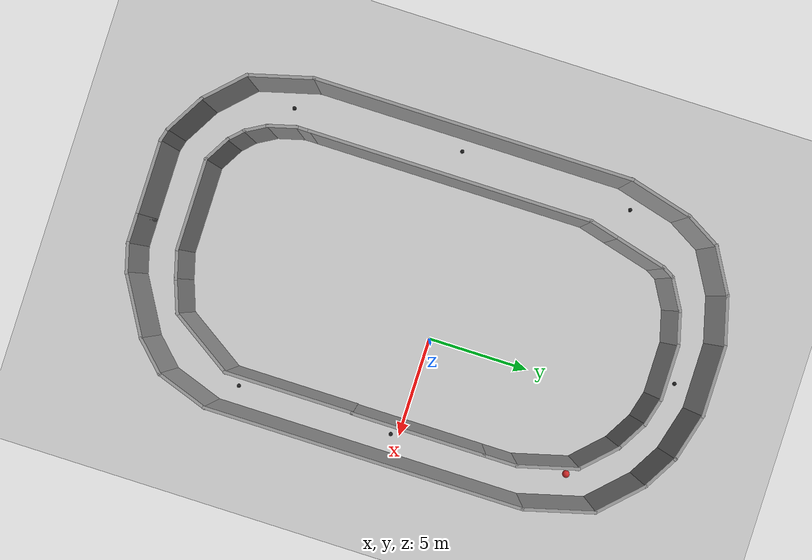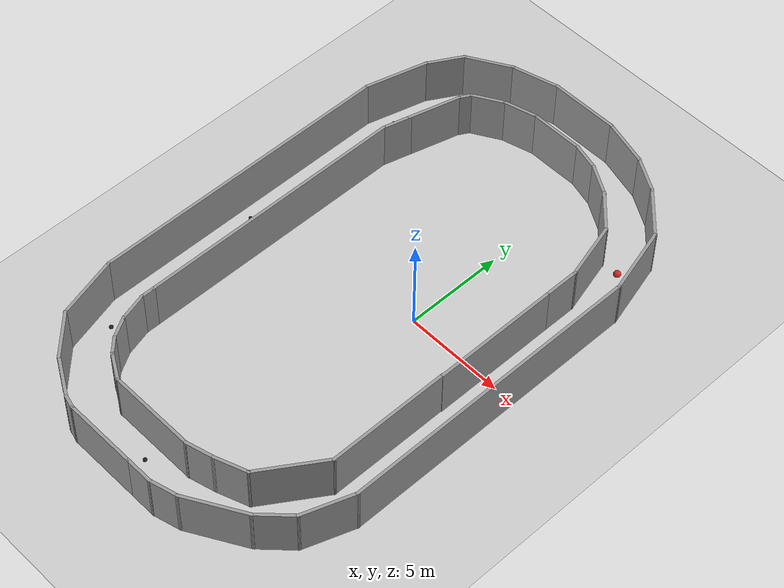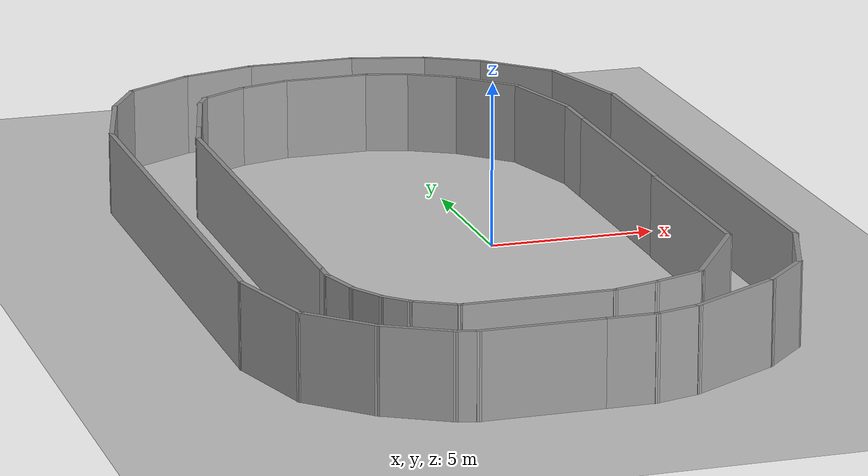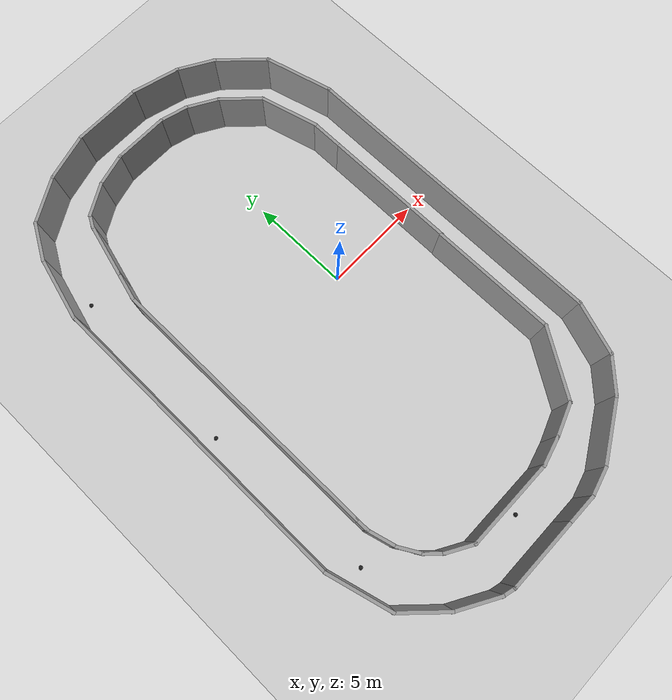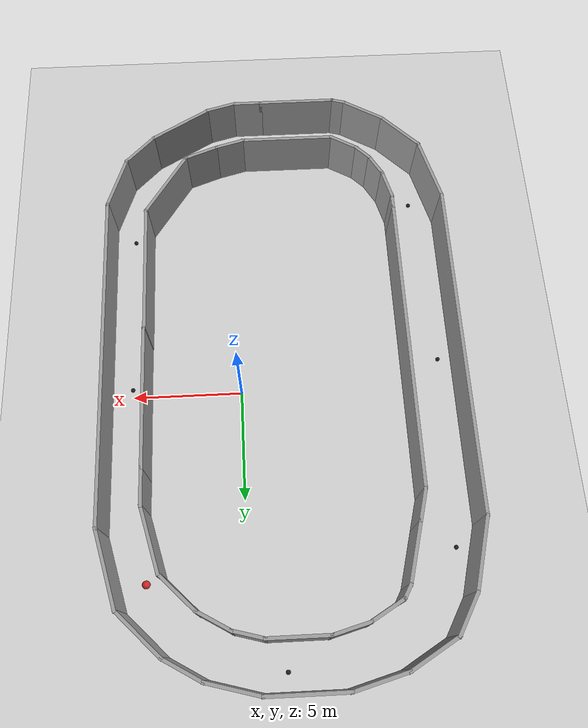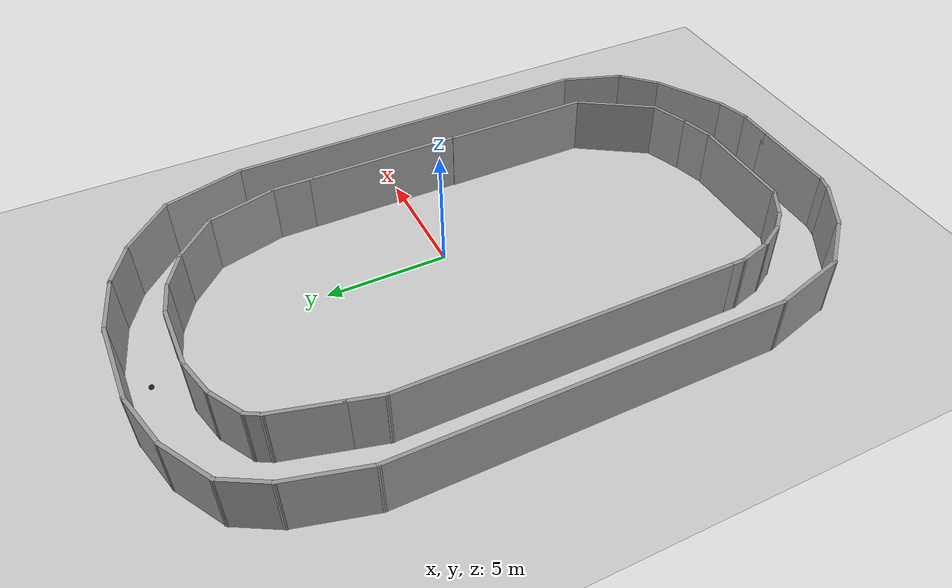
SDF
<sdf version="1.7">
 <world name="default">
  <light name="sun" type="directional">
   <pose>0 0 10 0 -0 0</pose>
   <diffuse>0.8 0.8 0.8 1</diffuse>
   <specular>0.2 0.2 0.2 1</specular>
   <attenuation>
    <range>1000</range>
    <constant>0.9</constant>
    <linear>0.01</linear>
    <quadratic>0.001</quadratic>
   </attenuation>
   <direction>-0.5 0.1 -0.9</direction>
   <spot><inner_angle>0</inner_angle><outer_angle>0</outer_angle><falloff>0</falloff></spot>
  </light>
  <model name="ground_plane">
   <static>1</static>
   <link name="link">
    <collision name="collision">
     <geometry><plane><normal>0 0 1</normal><size>100 100</size></plane></geometry>
     <surface>
      <contact><collide_bitmask>65535</collide_bitmask></contact>
      <friction><ode><mu>100</mu><mu2>50</mu2></ode></friction>
     </surface>
    </collision>
    <visual name="visual">
     <cast_shadows>0</cast_shadows>
     <geometry><plane><normal>0 0 1</normal><size>100 100</size></plane></geometry>
     <material>
      <script><uri>file://media/materials/scripts/gazebo.material</uri><name>Gazebo/Grey</name></script>
     </material>
    </visual>
   </link>
  </model>
  <gravity>0 0 -9.8</gravity>
  <magnetic_field>6e-06 2.3e-05 -4.2e-05</magnetic_field>
  <atmosphere type="adiabatic"/>
  <physics type="ode">
   <max_step_size>0.001</max_step_size>
   <real_time_factor>1</real_time_factor>
   <real_time_update_rate>1000</real_time_update_rate>
  </physics>
  <scene><ambient>0.4 0.4 0.4 1</ambient><background>0.7 0.7 0.7 1</background><shadows>1</shadows></scene>
  <spherical_coordinates>
   <surface_model>EARTH_WGS84</surface_model>
   <latitude_deg>0</latitude_deg>
   <longitude_deg>0</longitude_deg>
   <elevation>0</elevation>
   <heading_deg>0</heading_deg>
  </spherical_coordinates>
  <model name="oval_track">
   <pose>-1.96071 -0.818867 0 0 -0 0</pose>
   <link name="Wall_0">
    <collision name="Wall_0_Collision">
     <geometry><box><size>15.5 0.15 2.5</size></box></geometry>
     <pose>0 0 1.25 0 -0 0</pose>
    </collision>
    <visual name="Wall_0_Visual">
     <pose>0 0 1.25 0 -0 0</pose>
     <geometry><box><size>15.5 0.15 2.5</size></box></geometry>
     <material>
      <script><uri>file://media/materials/scripts/gazebo.material</uri><name>Gazebo/Grey</name></script>
      <ambient>1 1 1 1</ambient>
     </material>
     <meta><layer>0</layer></meta>
    </visual>
    <pose>7.97814 -0.487002 0 0 -0 1.5708</pose>
   </link>
   <link name="Wall_10">
    <collision name="Wall_10_Collision">
     <geometry><box><size>3.25 0.15 2.5</size></box></geometry>
     <pose>0 0 1.25 0 -0 0</pose>
    </collision>
    <visual name="Wall_10_Visual">
     <pose>0 0 1.25 0 -0 0</pose>
     <geometry><box><size>3.25 0.15 2.5</size></box></geometry>
     <material>
      <script><uri>file://media/materials/scripts/gazebo.material</uri><name>Gazebo/Grey</name></script>
      <ambient>1 1 1 1</ambient>
     </material>
     <meta><layer>0</layer></meta>
    </visual>
    <pose>-7.58071 8.913 0 0 -0 -1.8326</pose>
   </link>
   <link name="Wall_12">
    <collision name="Wall_12_Collision">
     <geometry><box><size>15.5 0.15 2.5</size></box></geometry>
     <pose>0 0 1.25 0 -0 0</pose>
    </collision>
    <visual name="Wall_12_Visual">
     <pose>0 0 1.25 0 -0 0</pose>
     <geometry><box><size>15.5 0.15 2.5</size></box></geometry>
     <material>
      <script><uri>file://media/materials/scripts/gazebo.material</uri><name>Gazebo/Grey</name></script>
      <ambient>1 1 1 1</ambient>
     </material>
     <meta><layer>0</layer></meta>
    </visual>
    <pose>-7.98188 -0.25919 0 0 -0 -1.5708</pose>
   </link>
   <link name="Wall_13">
    <collision name="Wall_13_Collision">
     <geometry><box><size>3.25 0.15 2.5</size></box></geometry>
     <pose>0 0 1.25 0 -0 0</pose>
    </collision>
    <visual name="Wall_13_Visual">
     <pose>0 0 1.25 0 -0 0</pose>
     <geometry><box><size>3.25 0.15 2.5</size></box></geometry>
     <material>
      <script><uri>file://media/materials/scripts/gazebo.material</uri><name>Gazebo/Grey</name></script>
      <ambient>1 1 1 1</ambient>
     </material>
     <meta><layer>0</layer></meta>
    </visual>
    <pose>-7.58071 -9.43137 0 0 -0 -1.309</pose>
   </link>
   <link name="Wall_14">
    <collision name="Wall_14_Collision">
     <geometry><box><size>2.5 0.15 2.5</size></box></geometry>
     <pose>0 0 1.25 0 -0 0</pose>
    </collision>
    <visual name="Wall_14_Visual">
     <pose>0 0 1.25 0 -0 0</pose>
     <geometry><box><size>2.5 0.15 2.5</size></box></geometry>
     <material>
      <script><uri>file://media/materials/scripts/gazebo.material</uri><name>Gazebo/Grey</name></script>
      <ambient>1 1 1 1</ambient>
     </material>
     <meta><layer>0</layer></meta>
    </visual>
    <pose>-6.34869 -11.7594 0 0 -0 -0.785398</pose>
   </link>
   <link name="Wall_15">
    <collision name="Wall_15_Collision">
     <geometry><box><size>2.25 0.15 2.5</size></box></geometry>
     <pose>0 0 1.25 0 -0 0</pose>
    </collision>
    <visual name="Wall_15_Visual">
     <pose>0 0 1.25 0 -0 0</pose>
     <geometry><box><size>2.25 0.15 2.5</size></box></geometry>
     <material>
      <script><uri>file://media/materials/scripts/gazebo.material</uri><name>Gazebo/Grey</name></script>
      <ambient>1 1 1 1</ambient>
     </material>
     <meta><layer>0</layer></meta>
    </visual>
    <pose>-4.60851 -13.1153 0 0 -0 -0.523599</pose>
   </link>
   <link name="Wall_16">
    <collision name="Wall_16_Collision">
     <geometry><box><size>0.75 0.15 2.5</size></box></geometry>
     <pose>0 0 1.25 0 -0 0</pose>
    </collision>
    <visual name="Wall_16_Visual">
     <pose>0 0 1.25 0 -0 0</pose>
     <geometry><box><size>0.75 0.15 2.5</size></box></geometry>
     <material>
      <script><uri>file://media/materials/scripts/gazebo.material</uri><name>Gazebo/Grey</name></script>
      <ambient>1 1 1 1</ambient>
     </material>
     <meta><layer>0</layer></meta>
    </visual>
    <pose>-3.40941 -13.7179 0 0 -0 -0.261799</pose>
   </link>
   <link name="Wall_17">
    <collision name="Wall_17_Collision">
     <geometry><box><size>3.75 0.15 2.5</size></box></geometry>
     <pose>0 0 1.25 0 -0 0</pose>
    </collision>
    <visual name="Wall_17_Visual">
     <pose>0 0 1.25 0 -0 0</pose>
     <geometry><box><size>3.75 0.15 2.5</size></box></geometry>
     <material>
      <script><uri>file://media/materials/scripts/gazebo.material</uri><name>Gazebo/Grey</name></script>
      <ambient>1 1 1 1</ambient>
     </material>
     <meta><layer>0</layer></meta>
    </visual>
    <pose>-1.31963 -13.7956 0 0 -0 0</pose>
   </link>
   <link name="Wall_18">
    <collision name="Wall_18_Collision">
     <geometry><box><size>1.5 0.15 2.5</size></box></geometry>
     <pose>0 0 1.25 0 -0 0</pose>
    </collision>
    <visual name="Wall_18_Visual">
     <pose>0 0 1.25 0 -0 0</pose>
     <geometry><box><size>1.5 0.15 2.5</size></box></geometry>
     <material>
      <script><uri>file://media/materials/scripts/gazebo.material</uri><name>Gazebo/Grey</name></script>
      <ambient>1 1 1 1</ambient>
     </material>
     <meta><layer>0</layer></meta>
    </visual>
    <pose>1.15537 -13.7956 0 0 -0 0</pose>
   </link>
   <link name="Wall_19">
    <collision name="Wall_19_Collision">
     <geometry><box><size>1.5 0.15 2.5</size></box></geometry>
     <pose>0 0 1.25 0 -0 0</pose>
    </collision>
    <visual name="Wall_19_Visual">
     <pose>0 0 1.25 0 -0 0</pose>
     <geometry><box><size>1.5 0.15 2.5</size></box></geometry>
     <material>
      <script><uri>file://media/materials/scripts/gazebo.material</uri><name>Gazebo/Grey</name></script>
      <ambient>1 1 1 1</ambient>
     </material>
     <meta><layer>0</layer></meta>
    </visual>
    <pose>2.48237 -13.6209 0 0 -0 0.261799</pose>
   </link>
   <link name="Wall_2">
    <collision name="Wall_2_Collision">
     <geometry><box><size>3.5 0.15 2.5</size></box></geometry>
     <pose>0 0 1.25 0 -0 0</pose>
    </collision>
    <visual name="Wall_2_Visual">
     <pose>0 0 1.25 0 -0 0</pose>
     <geometry><box><size>3.5 0.15 2.5</size></box></geometry>
     <material>
      <script><uri>file://media/materials/scripts/gazebo.material</uri><name>Gazebo/Grey</name></script>
      <ambient>1 1 1 1</ambient>
     </material>
     <meta><layer>0</layer></meta>
    </visual>
    <pose>7.54462 8.80592 0 0 -0 1.8326</pose>
   </link>
   <link name="Wall_21">
    <collision name="Wall_21_Collision">
     <geometry><box><size>3.25 0.15 2.5</size></box></geometry>
     <pose>0 0 1.25 0 -0 0</pose>
    </collision>
    <visual name="Wall_21_Visual">
     <pose>0 0 1.25 0 -0 0</pose>
     <geometry><box><size>3.25 0.15 2.5</size></box></geometry>
     <material>
      <script><uri>file://media/materials/scripts/gazebo.material</uri><name>Gazebo/Grey</name></script>
      <ambient>1 1 1 1</ambient>
     </material>
     <meta><layer>0</layer></meta>
    </visual>
    <pose>4.47671 -12.6711 0 0 -0 0.523599</pose>
   </link>
   <link name="Wall_22">
    <collision name="Wall_22_Collision">
     <geometry><box><size>2 0.15 2.5</size></box></geometry>
     <pose>0 0 1.25 0 -0 0</pose>
    </collision>
    <visual name="Wall_22_Visual">
     <pose>0 0 1.25 0 -0 0</pose>
     <geometry><box><size>2 0.15 2.5</size></box></geometry>
     <material>
      <script><uri>file://media/materials/scripts/gazebo.material</uri><name>Gazebo/Grey</name></script>
      <ambient>1 1 1 1</ambient>
     </material>
     <meta><layer>0</layer></meta>
    </visual>
    <pose>6.47312 -11.2421 0 0 -0 0.785398</pose>
   </link>
   <link name="Wall_23">
    <collision name="Wall_23_Collision">
     <geometry><box><size>2.72091 0.15 2.5</size></box></geometry>
     <pose>0 0 1.25 0 -0 0</pose>
    </collision>
    <visual name="Wall_23_Visual">
     <pose>0 0 1.25 0 -0 0</pose>
     <geometry><box><size>2.72091 0.15 2.5</size></box></geometry>
     <material>
      <script><uri>file://media/materials/scripts/gazebo.material</uri><name>Gazebo/Grey</name></script>
      <ambient>1 1 1 1</ambient>
     </material>
     <meta><layer>0</layer></meta>
    </visual>
    <pose>7.55267 -9.375 0 0 -0 1.23344</pose>
   </link>
   <link name="Wall_25">
    <collision name="Wall_25_Collision">
     <geometry><box><size>6.5 0.15 2.5</size></box></geometry>
     <pose>0 0 1.25 0 -0 0</pose>
    </collision>
    <visual name="Wall_25_Visual">
     <pose>0 0 1.25 0 -0 0</pose>
     <geometry><box><size>6.5 0.15 2.5</size></box></geometry>
     <material>
      <script><uri>file://media/materials/scripts/gazebo.material</uri><name>Gazebo/Grey</name></script>
      <ambient>1 1 1 1</ambient>
     </material>
     <meta><layer>0</layer></meta>
    </visual>
    <pose>6.16806 1.57018 0 0 -0 1.5708</pose>
   </link>
   <link name="Wall_27">
    <collision name="Wall_27_Collision">
     <geometry><box><size>1.75 0.15 2.5</size></box></geometry>
     <pose>0 0 1.25 0 -0 0</pose>
    </collision>
    <visual name="Wall_27_Visual">
     <pose>0 0 1.25 0 -0 0</pose>
     <geometry><box><size>1.75 0.15 2.5</size></box></geometry>
     <material>
      <script><uri>file://media/materials/scripts/gazebo.material</uri><name>Gazebo/Grey</name></script>
      <ambient>1 1 1 1</ambient>
     </material>
     <meta><layer>0</layer></meta>
    </visual>
    <pose>6.16806 5.54519 0 0 -0 1.5708</pose>
   </link>
   <link name="Wall_28">
    <collision name="Wall_28_Collision">
     <geometry><box><size>3 0.15 2.5</size></box></geometry>
     <pose>0 0 1.25 0 -0 0</pose>
    </collision>
    <visual name="Wall_28_Visual">
     <pose>0 0 1.25 0 -0 0</pose>
     <geometry><box><size>3 0.15 2.5</size></box></geometry>
     <material>
      <script><uri>file://media/materials/scripts/gazebo.material</uri><name>Gazebo/Grey</name></script>
      <ambient>1 1 1 1</ambient>
     </material>
     <meta><layer>0</layer></meta>
    </visual>
    <pose>5.79924 7.72163 0 0 -0 1.8326</pose>
   </link>
   <link name="Wall_29">
    <collision name="Wall_29_Collision">
     <geometry><box><size>2.25 0.15 2.5</size></box></geometry>
     <pose>0 0 1.25 0 -0 0</pose>
    </collision>
    <visual name="Wall_29_Visual">
     <pose>0 0 1.25 0 -0 0</pose>
     <geometry><box><size>2.25 0.15 2.5</size></box></geometry>
     <material>
      <script><uri>file://media/materials/scripts/gazebo.material</uri><name>Gazebo/Grey</name></script>
      <ambient>1 1 1 1</ambient>
     </material>
     <meta><layer>0</layer></meta>
    </visual>
    <pose>4.68797 9.84053 0 0 -0 2.35619</pose>
   </link>
   <link name="Wall_3">
    <collision name="Wall_3_Collision">
     <geometry><box><size>2.75 0.15 2.5</size></box></geometry>
     <pose>0 0 1.25 0 -0 0</pose>
    </collision>
    <visual name="Wall_3_Visual">
     <pose>0 0 1.25 0 -0 0</pose>
     <geometry><box><size>2.75 0.15 2.5</size></box></geometry>
     <material>
      <script><uri>file://media/materials/scripts/gazebo.material</uri><name>Gazebo/Grey</name></script>
      <ambient>1 1 1 1</ambient>
     </material>
     <meta><layer>0</layer></meta>
    </visual>
    <pose>6.19186 11.3431 0 0 -0 2.35619</pose>
   </link>
   <link name="Wall_30">
    <collision name="Wall_30_Collision">
     <geometry><box><size>1.75 0.15 2.5</size></box></geometry>
     <pose>0 0 1.25 0 -0 0</pose>
    </collision>
    <visual name="Wall_30_Visual">
     <pose>0 0 1.25 0 -0 0</pose>
     <geometry><box><size>1.75 0.15 2.5</size></box></geometry>
     <material>
      <script><uri>file://media/materials/scripts/gazebo.material</uri><name>Gazebo/Grey</name></script>
      <ambient>1 1 1 1</ambient>
     </material>
     <meta><layer>0</layer></meta>
    </visual>
    <pose>3.25268 10.983 0 0 -0 2.61799</pose>
   </link>
   <link name="Wall_31">
    <collision name="Wall_31_Collision">
     <geometry><box><size>1.5 0.15 2.5</size></box></geometry>
     <pose>0 0 1.25 0 -0 0</pose>
    </collision>
    <visual name="Wall_31_Visual">
     <pose>0 0 1.25 0 -0 0</pose>
     <geometry><box><size>1.5 0.15 2.5</size></box></geometry>
     <material>
      <script><uri>file://media/materials/scripts/gazebo.material</uri><name>Gazebo/Grey</name></script>
      <ambient>1 1 1 1</ambient>
     </material>
     <meta><layer>0</layer></meta>
    </visual>
    <pose>1.90786 11.5577 0 0 -0 2.87979</pose>
   </link>
   <link name="Wall_32">
    <collision name="Wall_32_Collision">
     <geometry><box><size>2.75 0.15 2.5</size></box></geometry>
     <pose>0 0 1.25 0 -0 0</pose>
    </collision>
    <visual name="Wall_32_Visual">
     <pose>0 0 1.25 0 -0 0</pose>
     <geometry><box><size>2.75 0.15 2.5</size></box></geometry>
     <material>
      <script><uri>file://media/materials/scripts/gazebo.material</uri><name>Gazebo/Grey</name></script>
      <ambient>1 1 1 1</ambient>
     </material>
     <meta><layer>0</layer></meta>
    </visual>
    <pose>-0.044138 11.7324 0 0 -0 3.14159</pose>
   </link>
   <link name="Wall_33">
    <collision name="Wall_33_Collision">
     <geometry><box><size>1.75 0.15 2.5</size></box></geometry>
     <pose>0 0 1.25 0 -0 0</pose>
    </collision>
    <visual name="Wall_33_Visual">
     <pose>0 0 1.25 0 -0 0</pose>
     <geometry><box><size>1.75 0.15 2.5</size></box></geometry>
     <material>
      <script><uri>file://media/materials/scripts/gazebo.material</uri><name>Gazebo/Grey</name></script>
      <ambient>1 1 1 1</ambient>
     </material>
     <meta><layer>0</layer></meta>
    </visual>
    <pose>-2.11688 11.5253 0 0 -0 -2.87979</pose>
   </link>
   <link name="Wall_34">
    <collision name="Wall_34_Collision">
     <geometry><box><size>1.75 0.15 2.5</size></box></geometry>
     <pose>0 0 1.25 0 -0 0</pose>
    </collision>
    <visual name="Wall_34_Visual">
     <pose>0 0 1.25 0 -0 0</pose>
     <geometry><box><size>1.75 0.15 2.5</size></box></geometry>
     <material>
      <script><uri>file://media/materials/scripts/gazebo.material</uri><name>Gazebo/Grey</name></script>
      <ambient>1 1 1 1</ambient>
     </material>
     <meta><layer>0</layer></meta>
    </visual>
    <pose>-3.58244 10.9183 0 0 -0 -2.61799</pose>
   </link>
   <link name="Wall_35">
    <collision name="Wall_35_Collision">
     <geometry><box><size>0.75 0.15 2.5</size></box></geometry>
     <pose>0 0 1.25 0 -0 0</pose>
    </collision>
    <visual name="Wall_35_Visual">
     <pose>0 0 1.25 0 -0 0</pose>
     <geometry><box><size>0.75 0.15 2.5</size></box></geometry>
     <material>
      <script><uri>file://media/materials/scripts/gazebo.material</uri><name>Gazebo/Grey</name></script>
      <ambient>1 1 1 1</ambient>
     </material>
     <meta><layer>0</layer></meta>
    </visual>
    <pose>-4.42526 10.2585 0 0 -0 -2.0944</pose>
   </link>
   <link name="Wall_36">
    <collision name="Wall_36_Collision">
     <geometry><box><size>2.75 0.15 2.5</size></box></geometry>
     <pose>0 0 1.25 0 -0 0</pose>
    </collision>
    <visual name="Wall_36_Visual">
     <pose>0 0 1.25 0 -0 0</pose>
     <geometry><box><size>2.75 0.15 2.5</size></box></geometry>
     <material>
      <script><uri>file://media/materials/scripts/gazebo.material</uri><name>Gazebo/Grey</name></script>
      <ambient>1 1 1 1</ambient>
     </material>
     <meta><layer>0</layer></meta>
    </visual>
    <pose>-4.91172 8.74297 0 0 -0 -1.8326</pose>
   </link>
   <link name="Wall_37">
    <collision name="Wall_37_Collision">
     <geometry><box><size>1.5 0.15 2.5</size></box></geometry>
     <pose>0 0 1.25 0 -0 0</pose>
    </collision>
    <visual name="Wall_37_Visual">
     <pose>0 0 1.25 0 -0 0</pose>
     <geometry><box><size>1.5 0.15 2.5</size></box></geometry>
     <material>
      <script><uri>file://media/materials/scripts/gazebo.material</uri><name>Gazebo/Grey</name></script>
      <ambient>1 1 1 1</ambient>
     </material>
     <meta><layer>0</layer></meta>
    </visual>
    <pose>-5.42289 6.83527 0 0 -0 -1.8326</pose>
   </link>
   <link name="Wall_38">
    <collision name="Wall_38_Collision">
     <geometry><box><size>13.75 0.15 2.5</size></box></geometry>
     <pose>0 0 1.25 0 -0 0</pose>
    </collision>
    <visual name="Wall_38_Visual">
     <pose>0 0 1.25 0 -0 0</pose>
     <geometry><box><size>13.75 0.15 2.5</size></box></geometry>
     <material>
      <script><uri>file://media/materials/scripts/gazebo.material</uri><name>Gazebo/Grey</name></script>
      <ambient>1 1 1 1</ambient>
     </material>
     <meta><layer>0</layer></meta>
    </visual>
    <pose>-5.5976 -0.616729 0 0 -0 -1.5708</pose>
   </link>
   <link name="Wall_39">
    <collision name="Wall_39_Collision">
     <geometry><box><size>0.75 0.15 2.5</size></box></geometry>
     <pose>0 0 1.25 0 -0 0</pose>
    </collision>
    <visual name="Wall_39_Visual">
     <pose>0 0 1.25 0 -0 0</pose>
     <geometry><box><size>0.75 0.15 2.5</size></box></geometry>
     <material>
      <script><uri>file://media/materials/scripts/gazebo.material</uri><name>Gazebo/Grey</name></script>
      <ambient>1 1 1 1</ambient>
     </material>
     <meta><layer>0</layer></meta>
    </visual>
    <pose>-5.5976 -7.71673 0 0 -0 -1.5708</pose>
   </link>
   <link name="Wall_4">
    <collision name="Wall_4_Collision">
     <geometry><box><size>2 0.15 2.5</size></box></geometry>
     <pose>0 0 1.25 0 -0 0</pose>
    </collision>
    <visual name="Wall_4_Visual">
     <pose>0 0 1.25 0 -0 0</pose>
     <geometry><box><size>2 0.15 2.5</size></box></geometry>
     <material>
      <script><uri>file://media/materials/scripts/gazebo.material</uri><name>Gazebo/Grey</name></script>
      <ambient>1 1 1 1</ambient>
     </material>
     <meta><layer>0</layer></meta>
    </visual>
    <pose>4.47154 12.7248 0 0 -0 2.61799</pose>
   </link>
   <link name="Wall_40">
    <collision name="Wall_40_Collision">
     <geometry><box><size>1.5 0.15 2.5</size></box></geometry>
     <pose>0 0 1.25 0 -0 0</pose>
    </collision>
    <visual name="Wall_40_Visual">
     <pose>0 0 1.25 0 -0 0</pose>
     <geometry><box><size>1.5 0.15 2.5</size></box></geometry>
     <material>
      <script><uri>file://media/materials/scripts/gazebo.material</uri><name>Gazebo/Grey</name></script>
      <ambient>1 1 1 1</ambient>
     </material>
     <meta><layer>0</layer></meta>
    </visual>
    <pose>-5.42289 -8.66873 0 0 -0 -1.309</pose>
   </link>
   <link name="Wall_41">
    <collision name="Wall_41_Collision">
     <geometry><box><size>1.25 0.15 2.5</size></box></geometry>
     <pose>0 0 1.25 0 -0 0</pose>
    </collision>
    <visual name="Wall_41_Visual">
     <pose>0 0 1.25 0 -0 0</pose>
     <geometry><box><size>1.25 0.15 2.5</size></box></geometry>
     <material>
      <script><uri>file://media/materials/scripts/gazebo.material</uri><name>Gazebo/Grey</name></script>
      <ambient>1 1 1 1</ambient>
     </material>
     <meta><layer>0</layer></meta>
    </visual>
    <pose>-4.97319 -9.79704 0 0 -0 -1.0472</pose>
   </link>
   <link name="Wall_42">
    <collision name="Wall_42_Collision">
     <geometry><box><size>1 0.15 2.5</size></box></geometry>
     <pose>0 0 1.25 0 -0 0</pose>
    </collision>
    <visual name="Wall_42_Visual">
     <pose>0 0 1.25 0 -0 0</pose>
     <geometry><box><size>1 0.15 2.5</size></box></geometry>
     <material>
      <script><uri>file://media/materials/scripts/gazebo.material</uri><name>Gazebo/Grey</name></script>
      <ambient>1 1 1 1</ambient>
     </material>
     <meta><layer>0</layer></meta>
    </visual>
    <pose>-4.39767 -10.5739 0 0 -0 -0.785398</pose>
   </link>
   <link name="Wall_43">
    <collision name="Wall_43_Collision">
     <geometry><box><size>1.5 0.15 2.5</size></box></geometry>
     <pose>0 0 1.25 0 -0 0</pose>
    </collision>
    <visual name="Wall_43_Visual">
     <pose>0 0 1.25 0 -0 0</pose>
     <geometry><box><size>1.5 0.15 2.5</size></box></geometry>
     <material>
      <script><uri>file://media/materials/scripts/gazebo.material</uri><name>Gazebo/Grey</name></script>
      <ambient>1 1 1 1</ambient>
     </material>
     <meta><layer>0</layer></meta>
    </visual>
    <pose>-3.51258 -11.2119 0 0 -0 -0.523599</pose>
   </link>
   <link name="Wall_44">
    <collision name="Wall_44_Collision">
     <geometry><box><size>4.5 0.15 2.5</size></box></geometry>
     <pose>0 0 1.25 0 -0 0</pose>
    </collision>
    <visual name="Wall_44_Visual">
     <pose>0 0 1.25 0 -0 0</pose>
     <geometry><box><size>4.5 0.15 2.5</size></box></geometry>
     <material>
      <script><uri>file://media/materials/scripts/gazebo.material</uri><name>Gazebo/Grey</name></script>
      <ambient>1 1 1 1</ambient>
     </material>
     <meta><layer>0</layer></meta>
    </visual>
    <pose>-0.753014 -11.5494 0 0 -0 0</pose>
   </link>
   <link name="Wall_45">
    <collision name="Wall_45_Collision">
     <geometry><box><size>1.5 0.15 2.5</size></box></geometry>
     <pose>0 0 1.25 0 -0 0</pose>
    </collision>
    <visual name="Wall_45_Visual">
     <pose>0 0 1.25 0 -0 0</pose>
     <geometry><box><size>1.5 0.15 2.5</size></box></geometry>
     <material>
      <script><uri>file://media/materials/scripts/gazebo.material</uri><name>Gazebo/Grey</name></script>
      <ambient>1 1 1 1</ambient>
     </material>
     <meta><layer>0</layer></meta>
    </visual>
    <pose>2.07399 -11.3747 0 0 -0 0.261799</pose>
   </link>
   <link name="Wall_46">
    <collision name="Wall_46_Collision">
     <geometry><box><size>1.75716 0.15 2.5</size></box></geometry>
     <pose>0 0 1.25 0 -0 0</pose>
    </collision>
    <visual name="Wall_46_Visual">
     <pose>0 0 1.25 0 -0 0</pose>
     <geometry><box><size>1.75716 0.15 2.5</size></box></geometry>
     <material>
      <script><uri>file://media/materials/scripts/gazebo.material</uri><name>Gazebo/Grey</name></script>
      <ambient>1 1 1 1</ambient>
     </material>
     <meta><layer>0</layer></meta>
    </visual>
    <pose>3.48033 -10.923 0 0 -0 0.351854</pose>
   </link>
   <link name="Wall_47">
    <collision name="Wall_47_Collision">
     <geometry><box><size>3.62242 0.15 2.5</size></box></geometry>
     <pose>0 0 1.25 0 -0 0</pose>
    </collision>
    <visual name="Wall_47_Visual">
     <pose>0 0 1.25 0 -0 0</pose>
     <geometry><box><size>3.62242 0.15 2.5</size></box></geometry>
     <material>
      <script><uri>file://media/materials/scripts/gazebo.material</uri><name>Gazebo/Grey</name></script>
      <ambient>1 1 1 1</ambient>
     </material>
     <meta><layer>0</layer></meta>
    </visual>
    <pose>5.18745 -9.19467 0 0 -0 0.989913</pose>
   </link>
   <link name="Wall_48">
    <collision name="Wall_48_Collision">
     <geometry><box><size>6.25 0.15 2.5</size></box></geometry>
     <pose>0 0 1.25 0 -0 0</pose>
    </collision>
    <visual name="Wall_48_Visual">
     <pose>0 0 1.25 0 -0 0</pose>
     <geometry><box><size>6.25 0.15 2.5</size></box></geometry>
     <material>
      <script><uri>file://media/materials/scripts/gazebo.material</uri><name>Gazebo/Grey</name></script>
      <ambient>1 1 1 1</ambient>
     </material>
     <meta><layer>0</layer></meta>
    </visual>
    <pose>6.14022 -4.69323 0 0 -0 1.5708</pose>
   </link>
   <link name="Wall_5">
    <collision name="Wall_5_Collision">
     <geometry><box><size>2.5 0.15 2.5</size></box></geometry>
     <pose>0 0 1.25 0 -0 0</pose>
    </collision>
    <visual name="Wall_5_Visual">
     <pose>0 0 1.25 0 -0 0</pose>
     <geometry><box><size>2.5 0.15 2.5</size></box></geometry>
     <material>
      <script><uri>file://media/materials/scripts/gazebo.material</uri><name>Gazebo/Grey</name></script>
      <ambient>1 1 1 1</ambient>
     </material>
     <meta><layer>0</layer></meta>
    </visual>
    <pose>2.53551 13.4914 0 0 -0 2.87979</pose>
   </link>
   <link name="Wall_6">
    <collision name="Wall_6_Collision">
     <geometry><box><size>3.5 0.15 2.5</size></box></geometry>
     <pose>0 0 1.25 0 -0 0</pose>
    </collision>
    <visual name="Wall_6_Visual">
     <pose>0 0 1.25 0 -0 0</pose>
     <geometry><box><size>3.5 0.15 2.5</size></box></geometry>
     <material>
      <script><uri>file://media/materials/scripts/gazebo.material</uri><name>Gazebo/Grey</name></script>
      <ambient>1 1 1 1</ambient>
     </material>
     <meta><layer>0</layer></meta>
    </visual>
    <pose>-0.274455 13.7956 0 0 -0 3.14159</pose>
   </link>
   <link name="Wall_7">
    <collision name="Wall_7_Collision">
     <geometry><box><size>2.5 0.15 2.5</size></box></geometry>
     <pose>0 0 1.25 0 -0 0</pose>
    </collision>
    <visual name="Wall_7_Visual">
     <pose>0 0 1.25 0 -0 0</pose>
     <geometry><box><size>2.5 0.15 2.5</size></box></geometry>
     <material>
      <script><uri>file://media/materials/scripts/gazebo.material</uri><name>Gazebo/Grey</name></script>
      <ambient>1 1 1 1</ambient>
     </material>
     <meta><layer>0</layer></meta>
    </visual>
    <pose>-3.08442 13.4914 0 0 -0 -2.87979</pose>
   </link>
   <link name="Wall_8">
    <collision name="Wall_8_Collision">
     <geometry><box><size>2.5 0.15 2.5</size></box></geometry>
     <pose>0 0 1.25 0 -0 0</pose>
    </collision>
    <visual name="Wall_8_Visual">
     <pose>0 0 1.25 0 -0 0</pose>
     <geometry><box><size>2.5 0.15 2.5</size></box></geometry>
     <material>
      <script><uri>file://media/materials/scripts/gazebo.material</uri><name>Gazebo/Grey</name></script>
      <ambient>1 1 1 1</ambient>
     </material>
     <meta><layer>0</layer></meta>
    </visual>
    <pose>-5.23696 12.5998 0 0 -0 -2.61799</pose>
   </link>
   <link name="Wall_9">
    <collision name="Wall_9_Collision">
     <geometry><box><size>2 0.15 2.5</size></box></geometry>
     <pose>0 0 1.25 0 -0 0</pose>
    </collision>
    <visual name="Wall_9_Visual">
     <pose>0 0 1.25 0 -0 0</pose>
     <geometry><box><size>2 0.15 2.5</size></box></geometry>
     <material>
      <script><uri>file://media/materials/scripts/gazebo.material</uri><name>Gazebo/Grey</name></script>
      <ambient>1 1 1 1</ambient>
     </material>
     <meta><layer>0</layer></meta>
    </visual>
    <pose>-6.71704 11.2113 0 0 -0 -2.0944</pose>
   </link>
   <static>1</static>
  </model>
  <model name="cp_marker">
   <link name="link">
    <inertial>
     <mass>1</mass>
     <inertia><ixx>0.1</ixx><ixy>0</ixy><ixz>0</ixz><iyy>0.1</iyy><iyz>0</iyz><izz>0.1</izz></inertia>
    </inertial>
    <gravity>0</gravity>
    <visual name="visual">
     <geometry><sphere><radius>0.1</radius></sphere></geometry>
     <material>
      <script><name>Gazebo/Black</name><uri>file://media/materials/scripts/gazebo.material</uri></script>
      <shader type="pixel"/>
     </material>
    </visual>
   </link>
   <static>0</static>
   <pose>4.29514 8.42891 0 0 -0 0</pose>
  </model>
  <model name="cp_marker_0">
   <link name="link">
    <inertial>
     <mass>1</mass>
     <inertia><ixx>0.1</ixx><ixy>0</ixy><ixz>0</ixz><iyy>0.1</iyy><iyz>0</iyz><izz>0.1</izz></inertia>
    </inertial>
    <gravity>0</gravity>
    <visual name="visual">
     <geometry><sphere><radius>0.1</radius></sphere></geometry>
     <material>
      <script><name>Gazebo/Black</name><uri>file://media/materials/scripts/gazebo.material</uri></script>
      <shader type="pixel"/>
     </material>
    </visual>
   </link>
   <static>0</static>
   <pose>-1.55071 12.1568 0 0 -0 0</pose>
  </model>
  <model name="cp_marker_1">
   <link name="link">
    <inertial>
     <mass>1</mass>
     <inertia><ixx>0.1</ixx><ixy>0</ixy><ixz>0</ixz><iyy>0.1</iyy><iyz>0</iyz><izz>0.1</izz></inertia>
    </inertial>
    <gravity>0</gravity>
    <visual name="visual">
     <geometry><sphere><radius>0.1</radius></sphere></geometry>
     <material>
      <script><name>Gazebo/Black</name><uri>file://media/materials/scripts/gazebo.material</uri></script>
      <shader type="pixel"/>
     </material>
    </visual>
   </link>
   <static>0</static>
   <pose>-9.05332 7.4798 0 0 -0 0</pose>
  </model>
  <model name="cp_marker_2">
   <link name="link">
    <inertial>
     <mass>1</mass>
     <inertia><ixx>0.1</ixx><ixy>0</ixy><ixz>0</ixz><iyy>0.1</iyy><iyz>0</iyz><izz>0.1</izz></inertia>
    </inertial>
    <gravity>0</gravity>
    <visual name="visual">
     <geometry><sphere><radius>0.1</radius></sphere></geometry>
     <material>
      <script><name>Gazebo/Black</name><uri>file://media/materials/scripts/gazebo.material</uri></script>
      <shader type="pixel"/>
     </material>
    </visual>
   </link>
   <static>0</static>
   <pose>-9.2903 -1.27838 0 0 -0 0</pose>
  </model>
  <model name="cp_marker_3">
   <link name="link">
    <inertial>
     <mass>1</mass>
     <inertia><ixx>0.1</ixx><ixy>0</ixy><ixz>0</ixz><iyy>0.1</iyy><iyz>0</iyz><izz>0.1</izz></inertia>
    </inertial>
    <gravity>0</gravity>
    <visual name="visual">
     <geometry><sphere><radius>0.1</radius></sphere></geometry>
     <material>
      <script><name>Gazebo/Black</name><uri>file://media/materials/scripts/gazebo.material</uri></script>
      <shader type="pixel"/>
     </material>
    </visual>
   </link>
   <static>0</static>
   <pose>-8.80194 -9.80339 0 0 -0 0</pose>
  </model>
  <model name="cp_marker_4">
   <link name="link">
    <inertial>
     <mass>1</mass>
     <inertia><ixx>0.1</ixx><ixy>0</ixy><ixz>0</ixz><iyy>0.1</iyy><iyz>0</iyz><izz>0.1</izz></inertia>
    </inertial>
    <gravity>0</gravity>
    <visual name="visual">
     <geometry><sphere><radius>0.1</radius></sphere></geometry>
     <material>
      <script><name>Gazebo/Black</name><uri>file://media/materials/scripts/gazebo.material</uri></script>
      <shader type="pixel"/>
     </material>
    </visual>
   </link>
   <static>0</static>
   <pose>-2.43927 -13.1843 0 0 -0 0</pose>
  </model>
  <model name="cp_marker_5">
   <link name="link">
    <inertial>
     <mass>1</mass>
     <inertia><ixx>0.1</ixx><ixy>0</ixy><ixz>0</ixz><iyy>0.1</iyy><iyz>0</iyz><izz>0.1</izz></inertia>
    </inertial>
    <gravity>0</gravity>
    <visual name="visual">
     <geometry><sphere><radius>0.1</radius></sphere></geometry>
     <material>
      <script><name>Gazebo/Black</name><uri>file://media/materials/scripts/gazebo.material</uri></script>
      <shader type="pixel"/>
     </material>
    </visual>
   </link>
   <static>0</static>
   <pose>5.05546 -8.26067 0 0 -0 0</pose>
  </model>
  <model name="cp_marker_6">
   <link name="link">
    <inertial>
     <mass>1</mass>
     <inertia><ixx>0.1</ixx><ixy>0</ixy><ixz>0</ixz><iyy>0.1</iyy><iyz>0</iyz><izz>0.1</izz></inertia>
    </inertial>
    <gravity>0</gravity>
    <visual name="visual">
     <geometry><sphere><radius>0.1</radius></sphere></geometry>
     <material>
      <script><name>Gazebo/Black</name><uri>file://media/materials/scripts/gazebo.material</uri></script>
      <shader type="pixel"/>
     </material>
    </visual>
   </link>
   <static>0</static>
   <pose>5.05346 -0.406529 0 0 -0 0</pose>
  </model>
  <model name="cp">
   <link name="link">
    <inertial>
     <mass>1</mass>
     <inertia><ixx>0.1</ixx><ixy>0</ixy><ixz>0</ixz><iyy>0.1</iyy><iyz>0</iyz><izz>0.1</izz></inertia>
    </inertial>
    <gravity>0</gravity>
    <visual name="visual">
     <geometry><sphere><radius>0.18</radius></sphere></geometry>
     <material>
      <script><name>Gazebo/Red</name><uri>file://media/materials/scripts/gazebo.material</uri></script>
      <shader type="pixel"/>
     </material>
    </visual>
   </link>
   <static>0</static>
   <pose>4.30436 8.41292 0 0 -0 0</pose>
  </model>
 </world>
</sdf>
